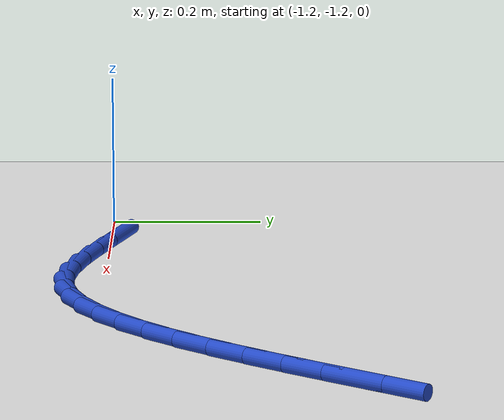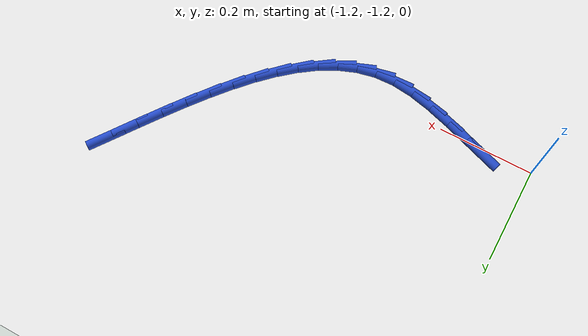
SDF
<sdf version="1.6">
 <world name="default">
  <model name="ground_plane">
   <static>1</static>
   <link name="link">
    <collision name="collision">
     <geometry><plane><normal>0 0 1</normal><size>100 100</size></plane></geometry>
     <surface><friction><ode><mu>100</mu><mu2>50</mu2></ode></friction></surface>
    </collision>
    <visual name="visual">
     <cast_shadows>0</cast_shadows>
     <geometry><plane><normal>0 0 1</normal><size>100 100</size></plane></geometry>
     <material>
      <script><uri>file://media/materials/scripts/gazebo.material</uri><name>Gazebo/WhiteGlow</name></script>
     </material>
    </visual>
   </link>
  </model>
  <model name="line">
   <link name="link_112">
    <pose>-1.096134759779055 -1.186687367526341 0.01 0 1.57 -0.33061646057809957</pose>
    <collision name="collision">
     <geometry><cylinder><radius>0.01</radius><length>0.08</length></cylinder></geometry>
    </collision>
    <visual name="visual">
     <material>
      <script><name>Gazebo/Blue</name><uri>file://media/materials/scripts/gazebo.material</uri></script>
     </material>
     <geometry><cylinder><radius>0.01</radius><length>0.08</length></cylinder></geometry>
    </visual>
   </link>
   <link name="link_113">
    <pose>-1.0487142586170952 -1.2029627378732897 0.01 0 1.57 -0.32494033879974643</pose>
    <collision name="collision">
     <geometry><cylinder><radius>0.01</radius><length>0.08</length></cylinder></geometry>
    </collision>
    <visual name="visual">
     <material>
      <script><name>Gazebo/Blue</name><uri>file://media/materials/scripts/gazebo.material</uri></script>
     </material>
     <geometry><cylinder><radius>0.01</radius><length>0.08</length></cylinder></geometry>
    </visual>
   </link>
   <link name="link_114">
    <pose>-1.00215067414588 -1.2186491397995747 0.01 0 1.57 -0.2896228983675322</pose>
    <collision name="collision">
     <geometry><cylinder><radius>0.01</radius><length>0.08</length></cylinder></geometry>
    </collision>
    <visual name="visual">
     <material>
      <script><name>Gazebo/Blue</name><uri>file://media/materials/scripts/gazebo.material</uri></script>
     </material>
     <geometry><cylinder><radius>0.01</radius><length>0.08</length></cylinder></geometry>
    </visual>
   </link>
   <link name="link_115">
    <pose>-0.9566006933366317 -1.2322231320202381 0.01 0 1.57 -0.2202999993529233</pose>
    <collision name="collision">
     <geometry><cylinder><radius>0.01</radius><length>0.08</length></cylinder></geometry>
    </collision>
    <visual name="visual">
     <material>
      <script><name>Gazebo/Blue</name><uri>file://media/materials/scripts/gazebo.material</uri></script>
     </material>
     <geometry><cylinder><radius>0.01</radius><length>0.08</length></cylinder></geometry>
    </visual>
   </link>
   <link name="link_116">
    <pose>-0.9122210031605741 -1.2421612732503216 0.01 0 1.57 -0.1105474146159008</pose>
    <collision name="collision">
     <geometry><cylinder><radius>0.01</radius><length>0.08</length></cylinder></geometry>
    </collision>
    <visual name="visual">
     <material>
      <script><name>Gazebo/Blue</name><uri>file://media/materials/scripts/gazebo.material</uri></script>
     </material>
     <geometry><cylinder><radius>0.01</radius><length>0.08</length></cylinder></geometry>
    </visual>
   </link>
   <link name="link_117">
    <pose>-0.8691682905889321 -1.2469401222048655 0.01 0 1.57 0.04407962176598815</pose>
    <collision name="collision">
     <geometry><cylinder><radius>0.01</radius><length>0.08</length></cylinder></geometry>
    </collision>
    <visual name="visual">
     <material>
      <script><name>Gazebo/Blue</name><uri>file://media/materials/scripts/gazebo.material</uri></script>
     </material>
     <geometry><cylinder><radius>0.01</radius><length>0.08</length></cylinder></geometry>
    </visual>
   </link>
   <link name="link_118">
    <pose>-0.8275903821909734 -1.2451061957939897 0.01 0 1.57 0.21535882790063576</pose>
    <collision name="collision">
     <geometry><cylinder><radius>0.01</radius><length>0.08</length></cylinder></geometry>
    </collision>
    <visual name="visual">
     <material>
      <script><name>Gazebo/Blue</name><uri>file://media/materials/scripts/gazebo.material</uri></script>
     </material>
     <geometry><cylinder><radius>0.01</radius><length>0.08</length></cylinder></geometry>
    </visual>
   </link>
   <link name="link_119">
    <pose>-0.7874921577333063 -1.2363346617901767 0.01 0 1.57 0.3722337085342315</pose>
    <collision name="collision">
     <geometry><cylinder><radius>0.01</radius><length>0.08</length></cylinder></geometry>
    </collision>
    <visual name="visual">
     <material>
      <script><name>Gazebo/Blue</name><uri>file://media/materials/scripts/gazebo.material</uri></script>
     </material>
     <geometry><cylinder><radius>0.01</radius><length>0.08</length></cylinder></geometry>
    </visual>
   </link>
   <link name="link_120">
    <pose>-0.7487628996176335 -1.221213398590794 0.01 0 1.57 0.5078707445093125</pose>
    <collision name="collision">
     <geometry><cylinder><radius>0.01</radius><length>0.08</length></cylinder></geometry>
    </collision>
    <visual name="visual">
     <material>
      <script><name>Gazebo/Blue</name><uri>file://media/materials/scripts/gazebo.material</uri></script>
     </material>
     <geometry><cylinder><radius>0.01</radius><length>0.08</length></cylinder></geometry>
    </visual>
   </link>
   <link name="link_121">
    <pose>-0.7112885771738378 -1.2003564432851146 0.01 0 1.57 0.6207262485408601</pose>
    <collision name="collision">
     <geometry><cylinder><radius>0.01</radius><length>0.08</length></cylinder></geometry>
    </collision>
    <visual name="visual">
     <material>
      <script><name>Gazebo/Blue</name><uri>file://media/materials/scripts/gazebo.material</uri></script>
     </material>
     <geometry><cylinder><radius>0.01</radius><length>0.08</length></cylinder></geometry>
    </visual>
   </link>
   <link name="link_122">
    <pose>-0.6749551597318016 -1.1743778329624128 0.01 0 1.57 0.7122637195912007</pose>
    <collision name="collision">
     <geometry><cylinder><radius>0.01</radius><length>0.08</length></cylinder></geometry>
    </collision>
    <visual name="visual">
     <material>
      <script><name>Gazebo/Blue</name><uri>file://media/materials/scripts/gazebo.material</uri></script>
     </material>
     <geometry><cylinder><radius>0.01</radius><length>0.08</length></cylinder></geometry>
    </visual>
   </link>
   <link name="link_123">
    <pose>-0.6396486166214055 -1.1438916047119605 0.01 0 1.57 0.7851961908639646</pose>
    <collision name="collision">
     <geometry><cylinder><radius>0.01</radius><length>0.08</length></cylinder></geometry>
    </collision>
    <visual name="visual">
     <material>
      <script><name>Gazebo/Blue</name><uri>file://media/materials/scripts/gazebo.material</uri></script>
     </material>
     <geometry><cylinder><radius>0.01</radius><length>0.08</length></cylinder></geometry>
    </visual>
   </link>
   <link name="link_124">
    <pose>-0.6052549171725315 -1.1095117956230314 0.01 0 1.57 0.8423781654220129</pose>
    <collision name="collision">
     <geometry><cylinder><radius>0.01</radius><length>0.08</length></cylinder></geometry>
    </collision>
    <visual name="visual">
     <material>
      <script><name>Gazebo/Blue</name><uri>file://media/materials/scripts/gazebo.material</uri></script>
     </material>
     <geometry><cylinder><radius>0.01</radius><length>0.08</length></cylinder></geometry>
    </visual>
   </link>
   <link name="link_125">
    <pose>-0.5716600307150624 -1.071852442784899 0.01 0 1.57 0.8863004377442305</pose>
    <collision name="collision">
     <geometry><cylinder><radius>0.01</radius><length>0.08</length></cylinder></geometry>
    </collision>
    <visual name="visual">
     <material>
      <script><name>Gazebo/Blue</name><uri>file://media/materials/scripts/gazebo.material</uri></script>
     </material>
     <geometry><cylinder><radius>0.01</radius><length>0.08</length></cylinder></geometry>
    </visual>
   </link>
   <link name="link_126">
    <pose>-0.5387499265788789 -1.0315275832868358 0.01 0 1.57 0.918934334762817</pose>
    <collision name="collision">
     <geometry><cylinder><radius>0.01</radius><length>0.08</length></cylinder></geometry>
    </collision>
    <visual name="visual">
     <material>
      <script><name>Gazebo/Blue</name><uri>file://media/materials/scripts/gazebo.material</uri></script>
     </material>
     <geometry><cylinder><radius>0.01</radius><length>0.08</length></cylinder></geometry>
    </visual>
   </link>
   <link name="link_127">
    <pose>-0.5064105740938637 -0.9891512542181163 0.01 0 1.57 0.94173022927436</pose>
    <collision name="collision">
     <geometry><cylinder><radius>0.01</radius><length>0.08</length></cylinder></geometry>
    </collision>
    <visual name="visual">
     <material>
      <script><name>Gazebo/Blue</name><uri>file://media/materials/scripts/gazebo.material</uri></script>
     </material>
     <geometry><cylinder><radius>0.01</radius><length>0.08</length></cylinder></geometry>
    </visual>
   </link>
   <link name="link_128">
    <pose>-0.4745279425898974 -0.9453374926680116 0.01 0 1.57 0.955664622742824</pose>
    <collision name="collision">
     <geometry><cylinder><radius>0.01</radius><length>0.08</length></cylinder></geometry>
    </collision>
    <visual name="visual">
     <material>
      <script><name>Gazebo/Blue</name><uri>file://media/materials/scripts/gazebo.material</uri></script>
     </material>
     <geometry><cylinder><radius>0.01</radius><length>0.08</length></cylinder></geometry>
    </visual>
   </link>
   <link name="link_129">
    <pose>-0.4429880013968624 -0.900700335725796 0.01 0 1.57 0.9612877636576925</pose>
    <collision name="collision">
     <geometry><cylinder><radius>0.01</radius><length>0.08</length></cylinder></geometry>
    </collision>
    <visual name="visual">
     <material>
      <script><name>Gazebo/Blue</name><uri>file://media/materials/scripts/gazebo.material</uri></script>
     </material>
     <geometry><cylinder><radius>0.01</radius><length>0.08</length></cylinder></geometry>
    </visual>
   </link>
   <link name="link_130">
    <pose>-0.41167671984464127 -0.8558538204807437 0.01 0 1.57 0.9587522019070447</pose>
    <collision name="collision">
     <geometry><cylinder><radius>0.01</radius><length>0.08</length></cylinder></geometry>
    </collision>
    <visual name="visual">
     <material>
      <script><name>Gazebo/Blue</name><uri>file://media/materials/scripts/gazebo.material</uri></script>
     </material>
     <geometry><cylinder><radius>0.01</radius><length>0.08</length></cylinder></geometry>
    </visual>
   </link>
  </model>
 </world>
</sdf>
